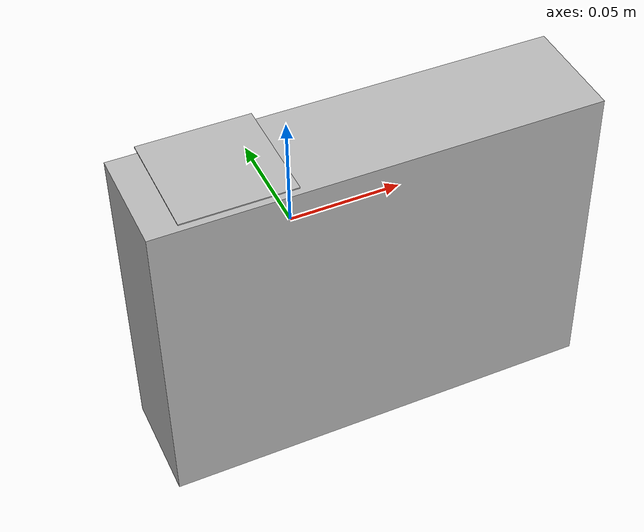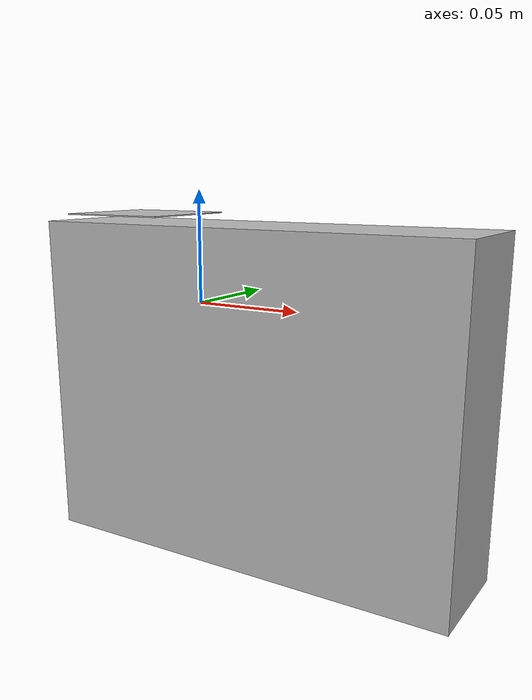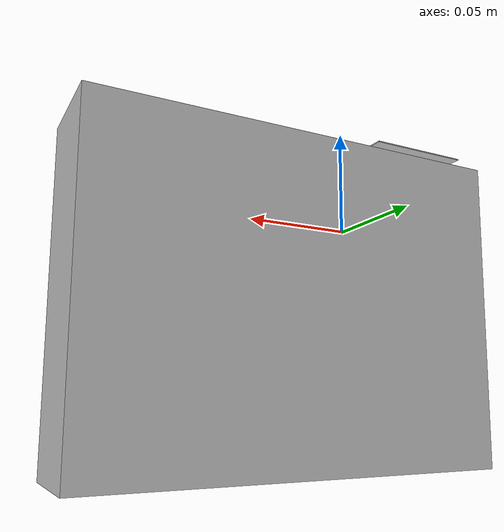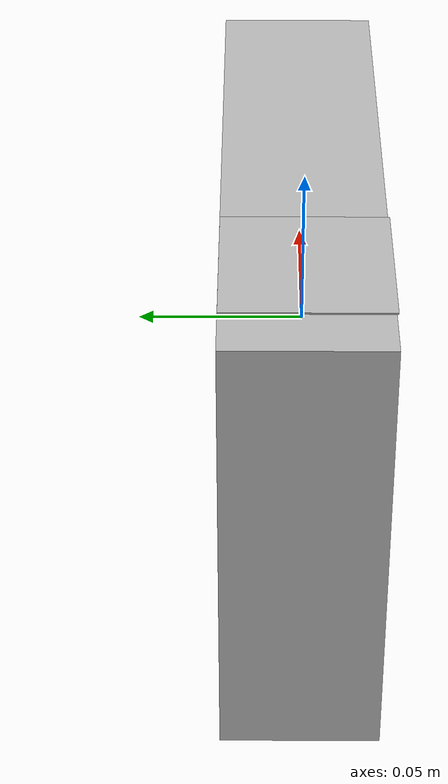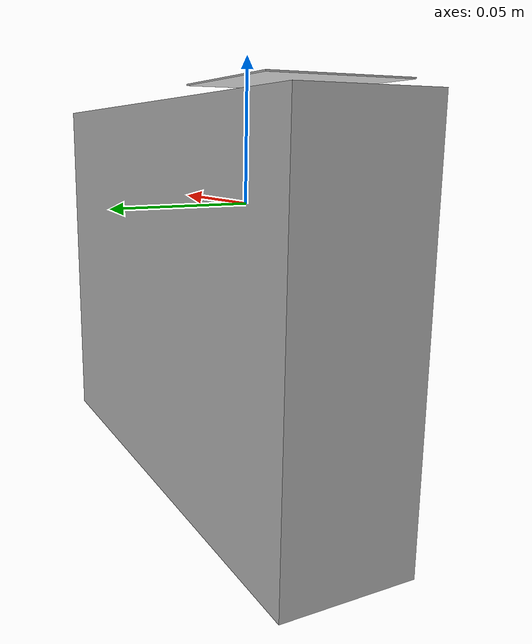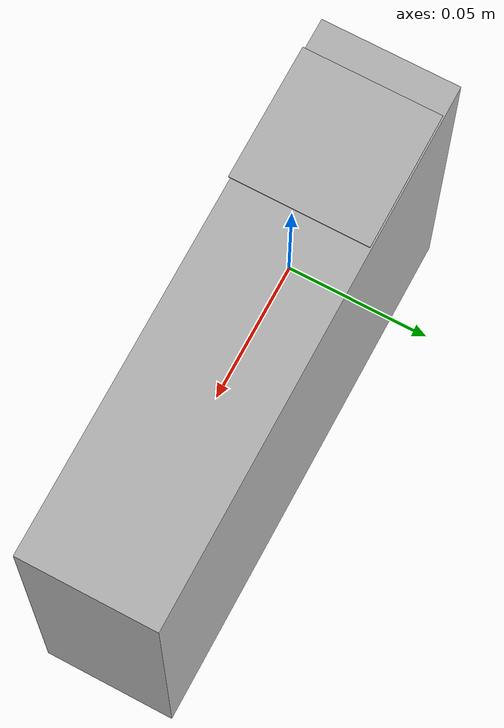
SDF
<?xml version='1.0'?>
<sdf version='1.6'>
  <model name='book_model1'>
    <model name='aruco_book'>
      <static>0</static>
      <link name='link'>
        <inertial>
          <mass>0.05</mass>
          <inertia>
            <ixx>5.2083e-05</ixx>
            <ixy>0</ixy>
            <ixz>0</ixz>
            <iyy>5.2083e-05</iyy>
            <iyz>0</iyz>
            <izz>2.0833e-05</izz>
          </inertia>
        </inertial>
        <collision name='colision'>
          <pose frame=''>0 0 0 0 -0 0</pose>
          <geometry>
            <box>
              <size>0.2 0.05 0.15</size>
            </box>
          </geometry>
          <surface>
            <friction>
              <ode>
                <mu>30</mu>
                <mu2>30</mu2>
                <fdir1>0 0 0</fdir1>
              </ode>
            </friction>
            <contact>
              <ode>
                <kp>1e+06</kp>
                <kd>100</kd>
                <min_depth>0.0025</min_depth>
                <max_vel>1</max_vel>
              </ode>
            </contact>
          </surface>
        </collision>
        <visual name='visual1'>
          <pose frame=''>0 0 0 0 -0 0</pose>
          <geometry>
            <box>
              <size>0.2 0.05 0.15</size>
            </box>
          </geometry>
        </visual>
        <velocity_decay>
          <linear>0</linear>
          <angular>0</angular>
        </velocity_decay>
        <self_collide>0</self_collide>
        <kinematic>0</kinematic>
        <gravity>1</gravity>
      </link>
      <pose frame=''>0.031906 7e-05 -0.039211 0 -0 0</pose>
    </model>
    <model name='aruco_marker'>
      <static>0</static>
      <link name='link'>
        <inertial>
          <mass>0.05</mass>
          <inertia>
            <ixx>5.2083e-05</ixx>
            <ixy>0</ixy>
            <ixz>0</ixz>
            <iyy>5.2083e-05</iyy>
            <iyz>0</iyz>
            <izz>2.0833e-05</izz>
          </inertia>
        </inertial>
        <collision name='colision'>
          <pose frame=''>0 0 0 0 -0 0</pose>
          <geometry>
            <box>
              <size>0.01 0.01 0.01</size>
            </box>
          </geometry>
          <surface>
            <friction>
              <ode>
                <mu>30</mu>
                <mu2>30</mu2>
                <fdir1>0 0 0</fdir1>
              </ode>
            </friction>
            <contact>
              <ode>
                <kp>1e+06</kp>
                <kd>100</kd>
                <min_depth>0.0025</min_depth>
                <max_vel>1</max_vel>
              </ode>
            </contact>
          </surface>
        </collision>
        <visual name='visual1'>
          <pose frame=''>0 0 0 0 -0 0</pose>
          <geometry>
            <mesh>
              <uri>model://aruco_cube/meshes/aruco_cube_5cm.dae</uri>
              <scale>1 1 0.01</scale>
            </mesh>
          </geometry>
        </visual>
        <velocity_decay>
          <linear>0</linear>
          <angular>0</angular>
        </velocity_decay>
        <self_collide>0</self_collide>
        <kinematic>0</kinematic>
        <gravity>1</gravity>
      </link>
      <pose frame=''>-0.030134 -7e-05 0.039212 0 -0 0</pose>
    </model>
    <joint name='link_JOINT_0' type='fixed'>
      <parent>aruco_book::link</parent>
      <child>aruco_marker::link</child>
      <pose frame=''>0 0 0 0 -0 0</pose>
      <physics>
        <ode>
          <limit>
            <cfm>0</cfm>
            <erp>0.2</erp>
          </limit>
          <suspension>
            <cfm>0</cfm>
            <erp>0.2</erp>
          </suspension>
        </ode>
      </physics>
    </joint>
    <static>0</static>
    <allow_auto_disable>1</allow_auto_disable>
  </model>
</sdf>
